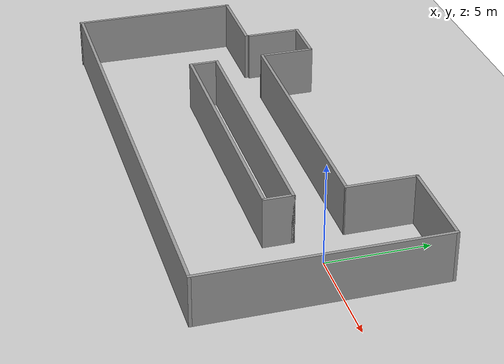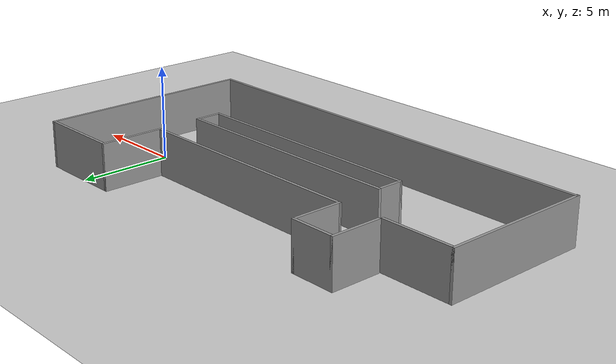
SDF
<sdf version="1.6">
 <world name="default">
  <light name="sun" type="directional">
   <pose>0 0 10 0 -0 0</pose>
   <diffuse>0.8 0.8 0.8 1</diffuse>
   <specular>0.2 0.2 0.2 1</specular>
   <attenuation>
    <range>1000</range>
    <constant>0.9</constant>
    <linear>0.01</linear>
    <quadratic>0.001</quadratic>
   </attenuation>
   <direction>-0.5 0.1 -0.9</direction>
  </light>
  <model name="ground_plane">
   <static>1</static>
   <link name="link">
    <collision name="collision">
     <geometry><plane><normal>0 0 1</normal><size>100 100</size></plane></geometry>
     <surface>
      <contact><collide_bitmask>65535</collide_bitmask></contact>
      <friction><ode><mu>100</mu><mu2>50</mu2></ode></friction>
     </surface>
    </collision>
    <visual name="visual">
     <cast_shadows>0</cast_shadows>
     <geometry><plane><normal>0 0 1</normal><size>100 100</size></plane></geometry>
     <material>
      <script><uri>file://media/materials/scripts/gazebo.material</uri><name>Gazebo/Grey</name></script>
     </material>
    </visual>
   </link>
  </model>
  <gravity>0 0 -9.8</gravity>
  <magnetic_field>6e-06 2.3e-05 -4.2e-05</magnetic_field>
  <atmosphere type="adiabatic"/>
  <physics name="default_physics" default="0" type="ode">
   <max_step_size>0.001</max_step_size>
   <real_time_factor>1</real_time_factor>
   <real_time_update_rate>1000</real_time_update_rate>
  </physics>
  <scene><ambient>0.4 0.4 0.4 1</ambient><background>0.7 0.7 0.7 1</background><shadows>1</shadows></scene>
  <spherical_coordinates>
   <surface_model>EARTH_WGS84</surface_model>
   <latitude_deg>0</latitude_deg>
   <longitude_deg>0</longitude_deg>
   <elevation>0</elevation>
   <heading_deg>0</heading_deg>
  </spherical_coordinates>
  <model name="574_Crisp_hallway_gazebo.world">
   <pose>-9.31479 -0.85644 0 0 -0 0</pose>
   <link name="Wall_25">
    <collision name="Wall_25_Collision">
     <geometry><box><size>2.75 0.15 2.5</size></box></geometry>
     <pose>0 0 1.25 0 -0 0</pose>
    </collision>
    <visual name="Wall_25_Visual">
     <pose>0 0 1.25 0 -0 0</pose>
     <geometry><box><size>2.75 0.15 2.5</size></box></geometry>
     <material>
      <script><uri>file://media/materials/scripts/gazebo.material</uri><name>Gazebo/Grey</name></script>
      <ambient>1 1 1 1</ambient>
     </material>
     <meta><layer>0</layer></meta>
    </visual>
    <pose>-8.05046 3.77112 0 0 -0 1.5708</pose>
   </link>
   <link name="Wall_26">
    <collision name="Wall_26_Collision">
     <geometry><box><size>2.5 0.15 2.5</size></box></geometry>
     <pose>0 0 1.25 0 -0 0</pose>
    </collision>
    <visual name="Wall_26_Visual">
     <pose>0 0 1.25 0 -0 0</pose>
     <geometry><box><size>2.5 0.15 2.5</size></box></geometry>
     <material>
      <script><uri>file://media/materials/scripts/gazebo.material</uri><name>Gazebo/Grey</name></script>
      <ambient>1 1 1 1</ambient>
     </material>
     <meta><layer>0</layer></meta>
    </visual>
    <pose>-6.87546 5.07112 0 0 -0 0</pose>
   </link>
   <link name="Wall_27">
    <collision name="Wall_27_Collision">
     <geometry><box><size>2.75474 0.15 2.5</size></box></geometry>
     <pose>0 0 1.25 0 -0 0</pose>
    </collision>
    <visual name="Wall_27_Visual">
     <pose>0 0 1.25 0 -0 0</pose>
     <geometry><box><size>2.75474 0.15 2.5</size></box></geometry>
     <material>
      <script><uri>file://media/materials/scripts/gazebo.material</uri><name>Gazebo/Grey</name></script>
      <ambient>1 1 1 1</ambient>
     </material>
     <meta><layer>0</layer></meta>
    </visual>
    <pose>-5.70046 3.76875 0 0 0 -1.5708</pose>
   </link>
   <link name="Wall_28">
    <collision name="Wall_28_Collision">
     <geometry><box><size>13.25 0.15 2.5</size></box></geometry>
     <pose>0 0 1.25 0 -0 0</pose>
    </collision>
    <visual name="Wall_28_Visual">
     <pose>0 0 1.25 0 -0 0</pose>
     <geometry><box><size>13.25 0.15 2.5</size></box></geometry>
     <material>
      <script><uri>file://media/materials/scripts/gazebo.material</uri><name>Gazebo/Grey</name></script>
      <ambient>1 1 1 1</ambient>
     </material>
     <meta><layer>0</layer></meta>
    </visual>
    <pose>0.849537 2.46875 0 0 -0 0.000362</pose>
   </link>
   <link name="Wall_29">
    <collision name="Wall_29_Collision">
     <geometry><box><size>3.5 0.15 2.5</size></box></geometry>
     <pose>0 0 1.25 0 -0 0</pose>
    </collision>
    <visual name="Wall_29_Visual">
     <pose>0 0 1.25 0 -0 0</pose>
     <geometry><box><size>3.5 0.15 2.5</size></box></geometry>
     <material>
      <script><uri>file://media/materials/scripts/gazebo.material</uri><name>Gazebo/Grey</name></script>
      <ambient>1 1 1 1</ambient>
     </material>
     <meta><layer>0</layer></meta>
    </visual>
    <pose>7.39954 4.14612 0 0 -0 1.5708</pose>
   </link>
   <link name="Wall_30">
    <collision name="Wall_30_Collision">
     <geometry><box><size>4.75 0.15 2.5</size></box></geometry>
     <pose>0 0 1.25 0 -0 0</pose>
    </collision>
    <visual name="Wall_30_Visual">
     <pose>0 0 1.25 0 -0 0</pose>
     <geometry><box><size>4.75 0.15 2.5</size></box></geometry>
     <material>
      <script><uri>file://media/materials/scripts/gazebo.material</uri><name>Gazebo/Grey</name></script>
      <ambient>1 1 1 1</ambient>
     </material>
     <meta><layer>0</layer></meta>
    </visual>
    <pose>9.69954 5.82112 0 0 -0 0</pose>
   </link>
   <link name="Wall_31">
    <collision name="Wall_31_Collision">
     <geometry><box><size>11.75 0.15 2.5</size></box></geometry>
     <pose>0 0 1.25 0 -0 0</pose>
    </collision>
    <visual name="Wall_31_Visual">
     <pose>0 0 1.25 0 -0 0</pose>
     <geometry><box><size>11.75 0.15 2.5</size></box></geometry>
     <material>
      <script><uri>file://media/materials/scripts/gazebo.material</uri><name>Gazebo/Grey</name></script>
      <ambient>1 1 1 1</ambient>
     </material>
     <meta><layer>0</layer></meta>
    </visual>
    <pose>11.9995 0.021121 0 0 0 -1.5708</pose>
   </link>
   <link name="Wall_32">
    <collision name="Wall_32_Collision">
     <geometry><box><size>24.1028 0.15 2.5</size></box></geometry>
     <pose>0 0 1.25 0 -0 0</pose>
    </collision>
    <visual name="Wall_32_Visual">
     <pose>0 0 1.25 0 -0 0</pose>
     <geometry><box><size>24.1028 0.15 2.5</size></box></geometry>
     <material>
      <script><uri>file://media/materials/scripts/gazebo.material</uri><name>Gazebo/Grey</name></script>
      <ambient>1 1 1 1</ambient>
     </material>
     <meta><layer>0</layer></meta>
    </visual>
    <pose>0.023124 -5.77687 0 0 -0 3.14142</pose>
   </link>
   <link name="Wall_33">
    <collision name="Wall_33_Collision">
     <geometry><box><size>8.25 0.15 2.5</size></box></geometry>
     <pose>0 0 1.25 0 -0 0</pose>
    </collision>
    <visual name="Wall_33_Visual">
     <pose>0 0 1.25 0 -0 0</pose>
     <geometry><box><size>8.25 0.15 2.5</size></box></geometry>
     <material>
      <script><uri>file://media/materials/scripts/gazebo.material</uri><name>Gazebo/Grey</name></script>
      <ambient>1 1 1 1</ambient>
     </material>
     <meta><layer>0</layer></meta>
    </visual>
    <pose>-11.9995 -1.77112 0 0 -0 1.5708</pose>
   </link>
   <link name="Wall_36">
    <collision name="Wall_36_Collision">
     <geometry><box><size>4 0.15 2.5</size></box></geometry>
     <pose>0 0 1.25 0 -0 0</pose>
    </collision>
    <visual name="Wall_36_Visual">
     <pose>0 0 1.25 0 -0 0</pose>
     <geometry><box><size>4 0.15 2.5</size></box></geometry>
     <material>
      <script><uri>file://media/materials/scripts/gazebo.material</uri><name>Gazebo/Grey</name></script>
      <ambient>1 1 1 1</ambient>
     </material>
     <meta><layer>0</layer></meta>
    </visual>
    <pose>-10.0745 2.27888 0 0 -0 0</pose>
   </link>
   <link name="Wall_45">
    <collision name="Wall_45_Collision">
     <geometry><box><size>13.25 0.15 2.5</size></box></geometry>
     <pose>0 0 1.25 0 -0 0</pose>
    </collision>
    <visual name="Wall_45_Visual">
     <pose>0 0 1.25 0 -0 0</pose>
     <geometry><box><size>13.25 0.15 2.5</size></box></geometry>
     <material>
      <script><uri>file://media/materials/scripts/gazebo.material</uri><name>Gazebo/Grey</name></script>
      <ambient>1 1 1 1</ambient>
     </material>
     <meta><layer>0</layer></meta>
    </visual>
    <pose>0.850277 0.042024 0 0 -0 0</pose>
   </link>
   <link name="Wall_47">
    <collision name="Wall_47_Collision">
     <geometry><box><size>1.5 0.15 2.5</size></box></geometry>
     <pose>0 0 1.25 0 -0 0</pose>
    </collision>
    <visual name="Wall_47_Visual">
     <pose>0 0 1.25 0 -0 0</pose>
     <geometry><box><size>1.5 0.15 2.5</size></box></geometry>
     <material>
      <script><uri>file://media/materials/scripts/gazebo.material</uri><name>Gazebo/Grey</name></script>
      <ambient>1 1 1 1</ambient>
     </material>
     <meta><layer>0</layer></meta>
    </visual>
    <pose>-5.69972 -0.632976 0 0 0 -1.5708</pose>
   </link>
   <link name="Wall_48">
    <collision name="Wall_48_Collision">
     <geometry><box><size>13.25 0.15 2.5</size></box></geometry>
     <pose>0 0 1.25 0 -0 0</pose>
    </collision>
    <visual name="Wall_48_Visual">
     <pose>0 0 1.25 0 -0 0</pose>
     <geometry><box><size>13.25 0.15 2.5</size></box></geometry>
     <material>
      <script><uri>file://media/materials/scripts/gazebo.material</uri><name>Gazebo/Grey</name></script>
      <ambient>1 1 1 1</ambient>
     </material>
     <meta><layer>0</layer></meta>
    </visual>
    <pose>0.850277 -1.30798 0 0 -0 0</pose>
   </link>
   <link name="Wall_49">
    <collision name="Wall_49_Collision">
     <geometry><box><size>1.5 0.15 2.5</size></box></geometry>
     <pose>0 0 1.25 0 -0 0</pose>
    </collision>
    <visual name="Wall_49_Visual">
     <pose>0 0 1.25 0 -0 0</pose>
     <geometry><box><size>1.5 0.15 2.5</size></box></geometry>
     <material>
      <script><uri>file://media/materials/scripts/gazebo.material</uri><name>Gazebo/Grey</name></script>
      <ambient>1 1 1 1</ambient>
     </material>
     <meta><layer>0</layer></meta>
    </visual>
    <pose>7.40028 -0.632976 0 0 -0 1.5708</pose>
   </link>
   <static>1</static>
  </model>
 </world>
</sdf>
